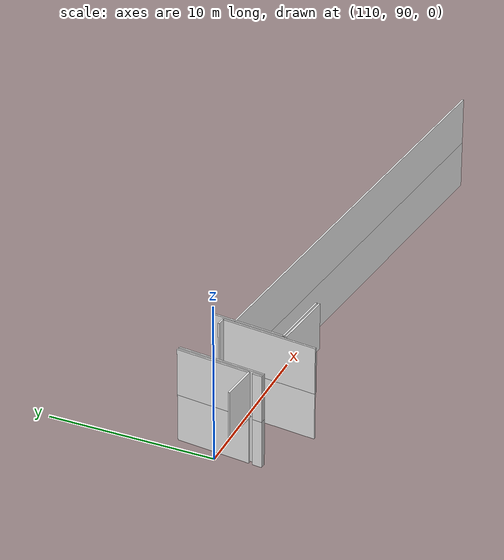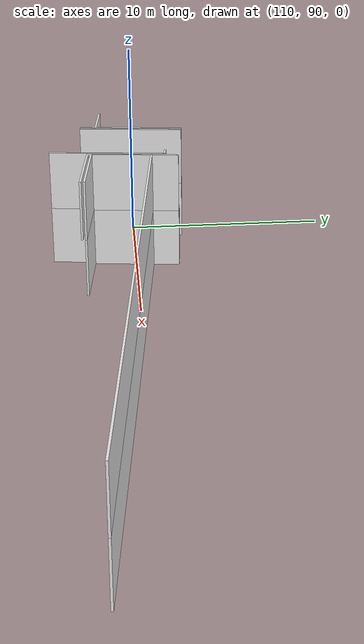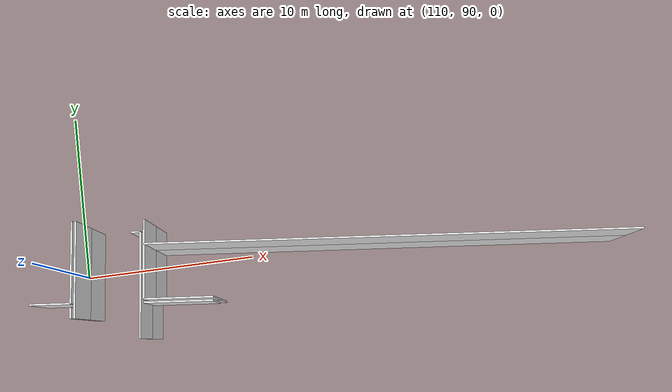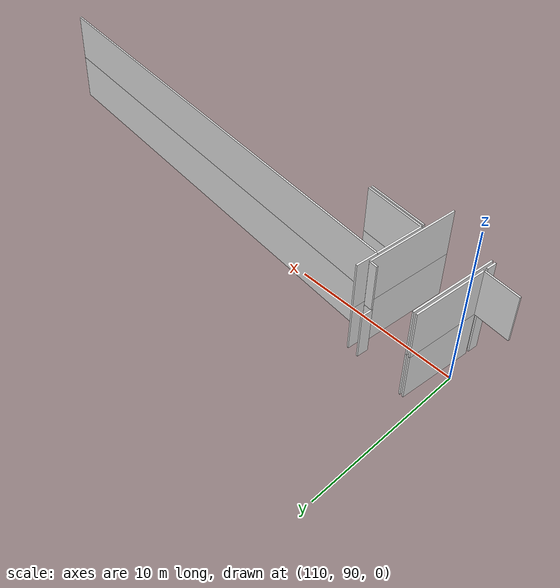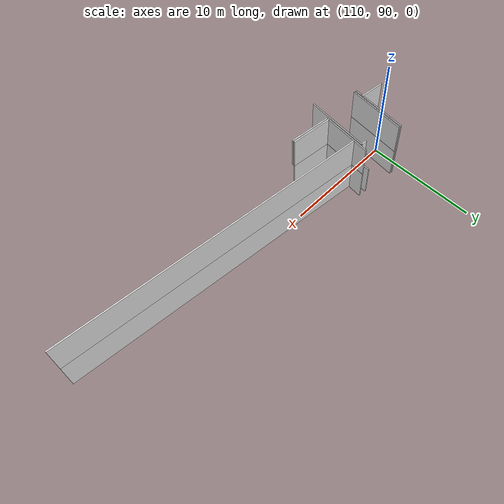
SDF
<sdf version="1.6">
 <world name="default">
  <model name="wall_110.9_89.9_1.5">
   <static>true</static>
   <pose>110.875 89.93999999994412 1.5 0 0 1.4703748041183955</pose>
   <link name="link">
    <visual name="visual">
     <geometry><box><size>5.286634089633801 0.1 3</size></box></geometry>
     <material>
      <script><uri>file://media/materials/scripts/gazebo.material</uri><name>Gazebo/White</name></script>
     </material>
    </visual>
    <collision name="collision"><geometry><box><size>5.286634089633801 0.1 3</size></box></geometry></collision>
   </link>
  </model>
  <model name="wall_114.1_91.9_1.5">
   <static>true</static>
   <pose>114.14499999998952 91.91499999980442 1.5 0 0 -1.6718996985493473</pose>
   <link name="link">
    <visual name="visual">
     <geometry><box><size>0.693541635321099 0.1 3</size></box></geometry>
     <material>
      <script><uri>file://media/materials/scripts/gazebo.material</uri><name>Gazebo/White</name></script>
     </material>
    </visual>
    <collision name="collision"><geometry><box><size>0.693541635321099 0.1 3</size></box></geometry></collision>
   </link>
  </model>
  <model name="wall_114.4_91.5_1.5">
   <static>true</static>
   <pose>114.35499999998137 91.5449999999255 1.5 0 0 -0.1016888513887821</pose>
   <link name="link">
    <visual name="visual">
     <geometry><box><size>0.49254441421281653 0.1 3</size></box></geometry>
     <material>
      <script><uri>file://media/materials/scripts/gazebo.material</uri><name>Gazebo/White</name></script>
     </material>
    </visual>
    <collision name="collision"><geometry><box><size>0.49254441421281653 0.1 3</size></box></geometry></collision>
   </link>
  </model>
  <model name="wall_114.3_88.6_1.5">
   <static>true</static>
   <pose>114.30999999999767 88.64500000001863 1.5 0 0 -1.671325860608872</pose>
   <link name="link">
    <visual name="visual">
     <geometry><box><size>5.7791781422578925 0.1 3</size></box></geometry>
     <material>
      <script><uri>file://media/materials/scripts/gazebo.material</uri><name>Gazebo/White</name></script>
     </material>
    </visual>
    <collision name="collision"><geometry><box><size>5.7791781422578925 0.1 3</size></box></geometry></collision>
   </link>
  </model>
  <model name="wall_110.7_90.4_1.5">
   <static>true</static>
   <pose>110.7049999999872 90.35999999986961 1.5 0 0 1.4702397722029048</pose>
   <link name="link">
    <visual name="visual">
     <geometry><box><size>4.482644308851437 0.1 3</size></box></geometry>
     <material>
      <script><uri>file://media/materials/scripts/gazebo.material</uri><name>Gazebo/White</name></script>
     </material>
    </visual>
    <collision name="collision"><geometry><box><size>4.482644308851437 0.1 3</size></box></geometry></collision>
   </link>
  </model>
  <model name="wall_110.4_87.6_1.5">
   <static>true</static>
   <pose>110.43000000002212 87.63000000012107 1.5 0 0 -1.6704649792668482</pose>
   <link name="link">
    <visual name="visual">
     <geometry><box><size>0.6029925373596918 0.1 3</size></box></geometry>
     <material>
      <script><uri>file://media/materials/scripts/gazebo.material</uri><name>Gazebo/White</name></script>
     </material>
    </visual>
    <collision name="collision"><geometry><box><size>0.6029925373596918 0.1 3</size></box></geometry></collision>
   </link>
  </model>
  <model name="wall_128.3_89.5_1.5">
   <static>true</static>
   <pose>128.32499999998254 89.47999999998137 1.5 0 0 3.0411593638960905</pose>
   <link name="link">
    <visual name="visual">
     <geometry><box><size>27.327709380797934 0.1 3</size></box></geometry>
     <material>
      <script><uri>file://media/materials/scripts/gazebo.material</uri><name>Gazebo/White</name></script>
     </material>
    </visual>
    <collision name="collision"><geometry><box><size>27.327709380797934 0.1 3</size></box></geometry></collision>
   </link>
  </model>
  <model name="wall_114.6_89.4_1.5">
   <static>true</static>
   <pose>114.5799999999872 89.35499999998137 1.5 0 0 -1.6707961050904907</pose>
   <link name="link">
    <visual name="visual">
     <geometry><box><size>3.005012479396658 0.1 3</size></box></geometry>
     <material>
      <script><uri>file://media/materials/scripts/gazebo.material</uri><name>Gazebo/White</name></script>
     </material>
    </visual>
    <collision name="collision"><geometry><box><size>3.005012479396658 0.1 3</size></box></geometry></collision>
   </link>
  </model>
  <model name="wall_116.3_87.7_1.5">
   <static>true</static>
   <pose>116.2949999999837 87.67500000004657 1.5 0 0 -0.09887226286603688</pose>
   <link name="link">
    <visual name="visual">
     <geometry><box><size>3.748306284123425 0.1 3</size></box></geometry>
     <material>
      <script><uri>file://media/materials/scripts/gazebo.material</uri><name>Gazebo/White</name></script>
     </material>
    </visual>
    <collision name="collision"><geometry><box><size>3.748306284123425 0.1 3</size></box></geometry></collision>
   </link>
  </model>
  <model name="wall_114.8_91.5_1.5">
   <static>true</static>
   <pose>114.79999999998836 91.52000000001863 1.5 0 0 1.4666963886634918</pose>
   <link name="link">
    <visual name="visual">
     <geometry><box><size>1.3472935833011899 0.1 3</size></box></geometry>
     <material>
      <script><uri>file://media/materials/scripts/gazebo.material</uri><name>Gazebo/White</name></script>
     </material>
    </visual>
    <collision name="collision"><geometry><box><size>1.3472935833011899 0.1 3</size></box></geometry></collision>
   </link>
  </model>
  <model name="wall_110.9_89.9_4.5">
   <static>true</static>
   <pose>110.875 89.93999999994412 4.5 0 0 1.4703748041183955</pose>
   <link name="link">
    <visual name="visual">
     <geometry><box><size>5.286634089633801 0.1 3</size></box></geometry>
     <material>
      <script><uri>file://media/materials/scripts/gazebo.material</uri><name>Gazebo/White</name></script>
     </material>
    </visual>
    <collision name="collision"><geometry><box><size>5.286634089633801 0.1 3</size></box></geometry></collision>
   </link>
  </model>
  <model name="wall_114.4_91.5_4.5">
   <static>true</static>
   <pose>114.35499999998137 91.5449999999255 4.5 0 0 -0.1016888513887821</pose>
   <link name="link">
    <visual name="visual">
     <geometry><box><size>0.49254441421281653 0.1 3</size></box></geometry>
     <material>
      <script><uri>file://media/materials/scripts/gazebo.material</uri><name>Gazebo/White</name></script>
     </material>
    </visual>
    <collision name="collision"><geometry><box><size>0.49254441421281653 0.1 3</size></box></geometry></collision>
   </link>
  </model>
  <model name="wall_114.3_88.6_4.5">
   <static>true</static>
   <pose>114.30999999999767 88.64500000001863 4.5 0 0 -1.671325860608872</pose>
   <link name="link">
    <visual name="visual">
     <geometry><box><size>5.7791781422578925 0.1 3</size></box></geometry>
     <material>
      <script><uri>file://media/materials/scripts/gazebo.material</uri><name>Gazebo/White</name></script>
     </material>
    </visual>
    <collision name="collision"><geometry><box><size>5.7791781422578925 0.1 3</size></box></geometry></collision>
   </link>
  </model>
  <model name="wall_109.4_88.2_4.5">
   <static>true</static>
   <pose>109.38499999998021 88.23999999999069 4.5 0 0 -0.10012073211888467</pose>
   <link name="link">
    <visual name="visual">
     <geometry><box><size>2.201022489685271 0.1 3</size></box></geometry>
     <material>
      <script><uri>file://media/materials/scripts/gazebo.material</uri><name>Gazebo/White</name></script>
     </material>
    </visual>
    <collision name="collision"><geometry><box><size>2.201022489685271 0.1 3</size></box></geometry></collision>
   </link>
  </model>
  <model name="wall_110.7_90.4_4.5">
   <static>true</static>
   <pose>110.7049999999872 90.35999999986961 4.5 0 0 1.4702397722029048</pose>
   <link name="link">
    <visual name="visual">
     <geometry><box><size>4.482644308851437 0.1 3</size></box></geometry>
     <material>
      <script><uri>file://media/materials/scripts/gazebo.material</uri><name>Gazebo/White</name></script>
     </material>
    </visual>
    <collision name="collision"><geometry><box><size>4.482644308851437 0.1 3</size></box></geometry></collision>
   </link>
  </model>
  <model name="wall_110.4_87.6_4.5">
   <static>true</static>
   <pose>110.43000000002212 87.63000000012107 4.5 0 0 -1.6704649792668482</pose>
   <link name="link">
    <visual name="visual">
     <geometry><box><size>0.6029925373596918 0.1 3</size></box></geometry>
     <material>
      <script><uri>file://media/materials/scripts/gazebo.material</uri><name>Gazebo/White</name></script>
     </material>
    </visual>
    <collision name="collision"><geometry><box><size>0.6029925373596918 0.1 3</size></box></geometry></collision>
   </link>
  </model>
  <model name="wall_116.3_87.5_4.5">
   <static>true</static>
   <pose>116.27499999999418 87.48999999999069 4.5 0 0 3.040066253673752</pose>
   <link name="link">
    <visual name="visual">
     <geometry><box><size>3.7493066026352446 0.1 3</size></box></geometry>
     <material>
      <script><uri>file://media/materials/scripts/gazebo.material</uri><name>Gazebo/White</name></script>
     </material>
    </visual>
    <collision name="collision"><geometry><box><size>3.7493066026352446 0.1 3</size></box></geometry></collision>
   </link>
  </model>
  <model name="wall_128.3_89.5_4.5">
   <static>true</static>
   <pose>128.32499999998254 89.47999999998137 4.5 0 0 3.0411593638960905</pose>
   <link name="link">
    <visual name="visual">
     <geometry><box><size>27.327709380797934 0.1 3</size></box></geometry>
     <material>
      <script><uri>file://media/materials/scripts/gazebo.material</uri><name>Gazebo/White</name></script>
     </material>
    </visual>
    <collision name="collision"><geometry><box><size>27.327709380797934 0.1 3</size></box></geometry></collision>
   </link>
  </model>
  <model name="wall_114.6_89.4_4.5">
   <static>true</static>
   <pose>114.5799999999872 89.35499999998137 4.5 0 0 -1.6707961050904907</pose>
   <link name="link">
    <visual name="visual">
     <geometry><box><size>3.005012479396658 0.1 3</size></box></geometry>
     <material>
      <script><uri>file://media/materials/scripts/gazebo.material</uri><name>Gazebo/White</name></script>
     </material>
    </visual>
    <collision name="collision"><geometry><box><size>3.005012479396658 0.1 3</size></box></geometry></collision>
   </link>
  </model>
  <model name="wall_116.3_87.7_4.5">
   <static>true</static>
   <pose>116.2949999999837 87.67500000004657 4.5 0 0 -0.09887226286603688</pose>
   <link name="link">
    <visual name="visual">
     <geometry><box><size>3.748306284123425 0.1 3</size></box></geometry>
     <material>
      <script><uri>file://media/materials/scripts/gazebo.material</uri><name>Gazebo/White</name></script>
     </material>
    </visual>
    <collision name="collision"><geometry><box><size>3.748306284123425 0.1 3</size></box></geometry></collision>
   </link>
  </model>
  <model name="wall_114.8_91.5_4.5">
   <static>true</static>
   <pose>114.79999999998836 91.52000000001863 4.5 0 0 1.4666963886634918</pose>
   <link name="link">
    <visual name="visual">
     <geometry><box><size>1.3472935833011899 0.1 3</size></box></geometry>
     <material>
      <script><uri>file://media/materials/scripts/gazebo.material</uri><name>Gazebo/White</name></script>
     </material>
    </visual>
    <collision name="collision"><geometry><box><size>1.3472935833011899 0.1 3</size></box></geometry></collision>
   </link>
  </model>
 </world>
</sdf>
